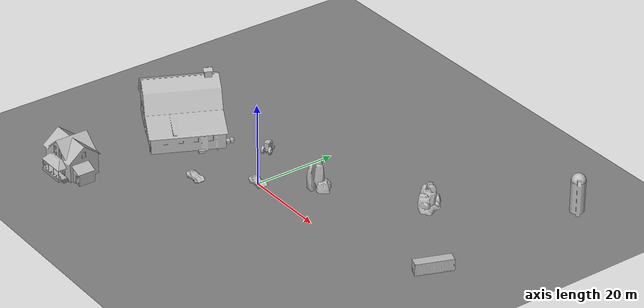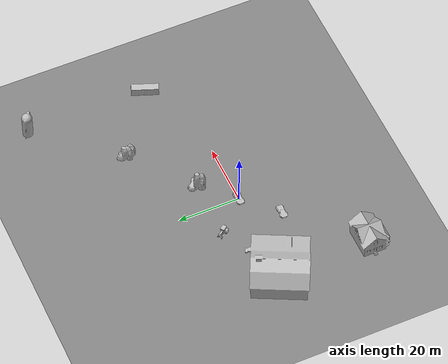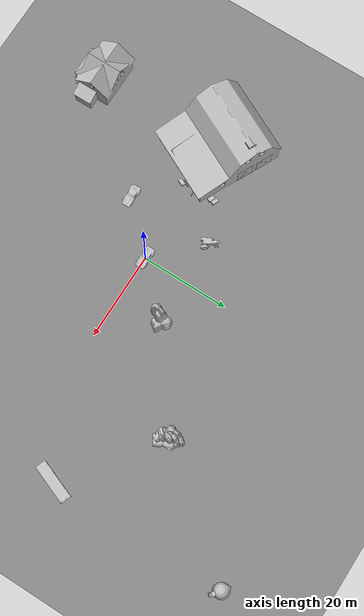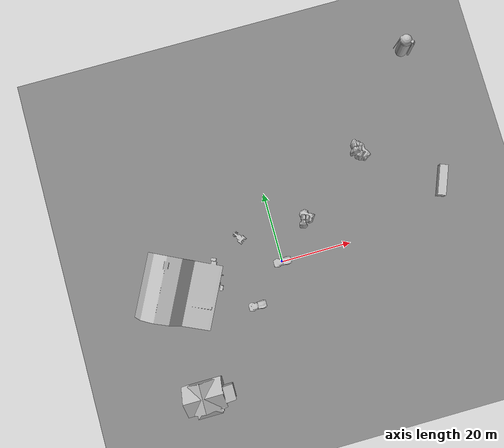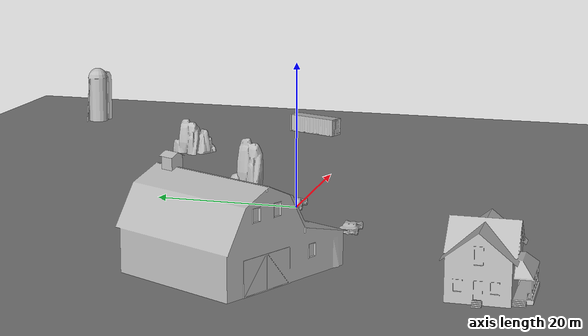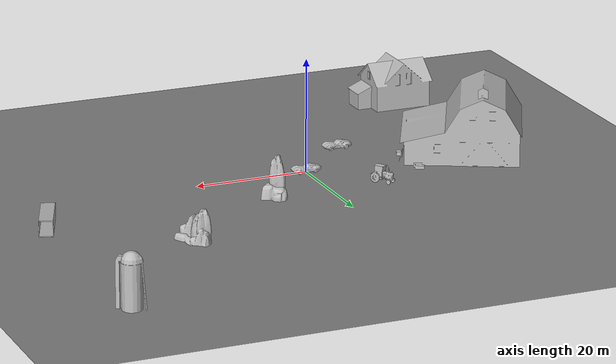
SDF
<sdf version="1.8">
 <world name="not_so_simple_trees">
  <plugin name="ignition::gazebo::systems::Physics" filename="ignition-gazebo-physics-system"/>
  <plugin name="ignition::gazebo::systems::UserCommands" filename="ignition-gazebo-user-commands-system"/>
  <plugin name="ignition::gazebo::systems::SceneBroadcaster" filename="ignition-gazebo-scene-broadcaster-system"/>
  <plugin name="ignition::gazebo::systems::Contact" filename="ignition-gazebo-contact-system"/>
  <light name="sun" type="directional">
   <pose>0 0 10 0 -0 0</pose>
   <diffuse>0.8 0.8 0.8 1</diffuse>
   <specular>0.2 0.2 0.2 1</specular>
   <attenuation>
    <range>1000</range>
    <constant>0.9</constant>
    <linear>0.01</linear>
    <quadratic>0.001</quadratic>
   </attenuation>
   <direction>-0.5 0.1 -0.9</direction>
  </light>
  <gravity>0 0 -9.81</gravity>
  <magnetic_field>6e-06 2.3e-05 -4.2e-05</magnetic_field>
  <atmosphere type="adiabatic"/>
  <physics name="default_physics" type="ignored">
   <max_step_size>0.01</max_step_size>
   <real_time_factor>1</real_time_factor>
   <real_time_update_rate>100</real_time_update_rate>
  </physics>
  <scene><ambient>1.0 1.0 1.0</ambient><background>0.8 0.8 0.8</background><shadows>1</shadows></scene>
  <spherical_coordinates>
   <latitude_deg>0.0</latitude_deg>
   <longitude_deg>0.0</longitude_deg>
   <elevation>10.0</elevation>
   <heading_deg>0</heading_deg>
   <surface_model>EARTH_WGS84</surface_model>
  </spherical_coordinates>
  <include><uri>model://grass_plane</uri><name>grass_plane</name></include>
  <include><uri>model://muscle_car</uri><name>muscle_car</name></include>
  <include><uri>model://muscle_car</uri><name>muscle_car_2</name><pose>-10 -10 0 0 0 0</pose></include>
  <include><uri>model://farm_house</uri><name>farm_house</name><pose>-30 -30 0 0 0 0</pose></include>
  <include><uri>model://farm_barn</uri><name>farm_barn</name><pose>-30 0 0 0 0 0</pose></include>
  <include>
   <uri>model://shipping_container</uri>
   <name>shipping_container</name>
   <pose>50 10 0 0 0 1.2</pose>
  </include>
  <include><uri>model://rock1</uri><name>rock1</name><pose>30 25 0 0 0 0</pose></include>
  <include><uri>model://rock2</uri><name>rock2</name><pose>10 10 0 0 0 0</pose></include>
  <include><uri>model://tractor_new</uri><name>tractor_new</name><pose>-10 10 0 0 0 0</pose></include>
  <include><uri>model://silo</uri><name>silo</name><pose>50 50 0 0 0 0</pose></include>
  <include><uri>model://silo</uri><name>silo</name><pose>50 50 0 0 0 0</pose></include>
 </world>
</sdf>

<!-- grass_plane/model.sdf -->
<sdf version="1.7">
<model name="grass_plane">
    <static>true</static>
    <link name="link">
        <collision name="collision">
            <geometry>
            <box>
                <normal>0 0 1</normal>
                <size>135 135 0.01</size>
            </box>
            </geometry>
        </collision>
        <visual name="visual">
            <cast_shadows>false</cast_shadows>
            <geometry>
            <plane>
                <normal>0 0 1</normal>
                <size>135 135</size>
            </plane>
            </geometry>
            <material>
                <ambient>0.5 0.5 0.5 1</ambient>
                <diffuse>0.5 0.5 0.5 1</diffuse>
                <specular>0.2 0.2 0.2 1</specular>
                <pbr>
                    <metal>
                    <albedo_map>
                        model://grass_plane/materials/textures/empty_grass.png
                    </albedo_map>
                    </metal>
                </pbr>
            </material>
        </visual>
    </link>
</model>
</sdf>

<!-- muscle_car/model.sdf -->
<sdf version="1.7">
  <model name="muscle_car">
    <static>true</static>
    <link name="muscle_car_link">
      <collision name="muscle_car_collision">
        <geometry>
          <mesh>
            <uri>model://muscle_car/muscle_car.dae</uri>
            <scale>1 1 1</scale>
          </mesh>
        </geometry>
      </collision>
      <visual name="muscle_car_visual">
        <geometry>
          <mesh>
            <uri>model://muscle_car/muscle_car.dae</uri>
            <scale>1 1 1</scale>
          </mesh>
        </geometry>
      </visual>
    </link>
  </model>
</sdf>

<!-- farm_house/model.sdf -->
<sdf version="1.7">
  <model name="farm_house">
    <static>true</static>
    <link name="farm_house_link">
      <collision name="farm_house_collision">
        <geometry>
          <mesh>
            <uri>model://farm_house/farm_house.dae</uri>
            <scale>1 1 1</scale>
          </mesh>
        </geometry>
      </collision>
      <visual name="farm_house_visual">
        <geometry>
          <mesh>
            <uri>model://farm_house/farm_house.dae</uri>
            <scale>1 1 1</scale>
          </mesh>
        </geometry>
      </visual>
    </link>
  </model>
</sdf>

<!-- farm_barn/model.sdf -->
<sdf version="1.7">
  <model name="farm_barn">
    <static>true</static>
    <link name="farm_barn_link">
      <collision name="farm_barn_collision">
        <geometry>
          <mesh>
            <uri>model://farm_barn/farm_barn.dae</uri>
            <scale>1 1 1</scale>
          </mesh>
        </geometry>
      </collision>
      <visual name="farm_barn_visual">
        <geometry>
          <mesh>
            <uri>model://farm_barn/farm_barn.dae</uri>
            <scale>1 1 1</scale>
          </mesh>
        </geometry>
      </visual>
    </link>
  </model>
</sdf>

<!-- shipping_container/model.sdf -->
<sdf version="1.7">
  <model name="shipping_container">
    <static>true</static>
    <link name="shipping_container_link">
      <collision name="shipping_container_collision">
        <geometry>
          <mesh>
            <uri>model://shipping_container/shipping_container.dae</uri>
            <scale>1 1 1</scale>
          </mesh>
        </geometry>
      </collision>
      <visual name="shipping_container_visual">
        <geometry>
          <mesh>
            <uri>model://shipping_container/shipping_container.dae</uri>
            <scale>1 1 1</scale>
          </mesh>
        </geometry>
      </visual>
    </link>
  </model>
</sdf>

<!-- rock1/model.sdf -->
<sdf version="1.7">
  <model name="rock1">
    <static>true</static>
    <link name="rock1_link">
      <collision name="rock1_collision">
        <geometry>
          <mesh>
            <uri>model://rock1/rock1.dae</uri>
            <scale>1 1 1</scale>
          </mesh>
        </geometry>
      </collision>
      <visual name="rock1_visual">
        <geometry>
          <mesh>
            <uri>model://rock1/rock1.dae</uri>
            <scale>1 1 1</scale>
          </mesh>
        </geometry>
      </visual>
    </link>
  </model>
</sdf>

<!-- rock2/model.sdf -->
<sdf version="1.7">
  <model name="rock2">
    <static>true</static>
    <link name="rock2_link">
      <collision name="rock2_collision">
        <geometry>
          <mesh>
            <uri>model://rock2/rock2.dae</uri>
            <scale>1 1 1</scale>
          </mesh>
        </geometry>
      </collision>
      <visual name="rock2_visual">
        <geometry>
          <mesh>
            <uri>model://rock2/rock2.dae</uri>
            <scale>1 1 1</scale>
          </mesh>
        </geometry>
      </visual>
    </link>
  </model>
</sdf>

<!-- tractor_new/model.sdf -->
<sdf version="1.7">
  <model name="tractor_new">
    <static>true</static>
    <link name="tractor_new_link">
      <collision name="tractor_new_collision">
        <geometry>
          <mesh>
            <uri>model://tractor_new/tractor_new.dae</uri>
            <scale>1 1 1</scale>
          </mesh>
        </geometry>
      </collision>
      <visual name="tractor_new_visual">
        <geometry>
          <mesh>
            <uri>model://tractor_new/tractor_new.dae</uri>
            <scale>1 1 1</scale>
          </mesh>
        </geometry>
      </visual>
    </link>
  </model>
</sdf>

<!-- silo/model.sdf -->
<sdf version="1.7">
  <model name="silo">
    <static>true</static>
    <link name="silo_link">
      <collision name="silo_collision">
        <geometry>
          <mesh>
            <uri>model://silo/silo.dae</uri>
            <scale>1 1 1</scale>
          </mesh>
        </geometry>
      </collision>
      <visual name="silo_visual">
        <geometry>
          <mesh>
            <uri>model://silo/silo.dae</uri>
            <scale>1 1 1</scale>
          </mesh>
        </geometry>
      </visual>
    </link>
  </model>
</sdf>
